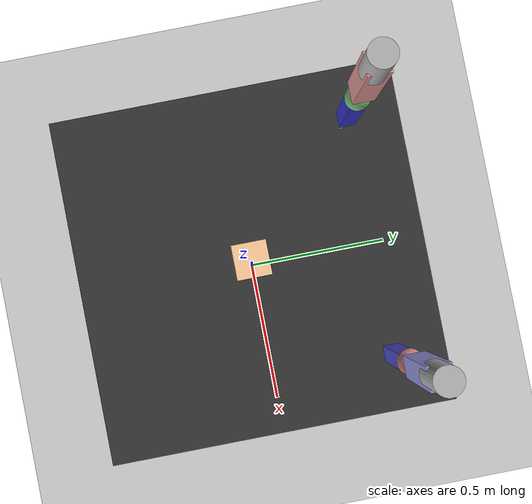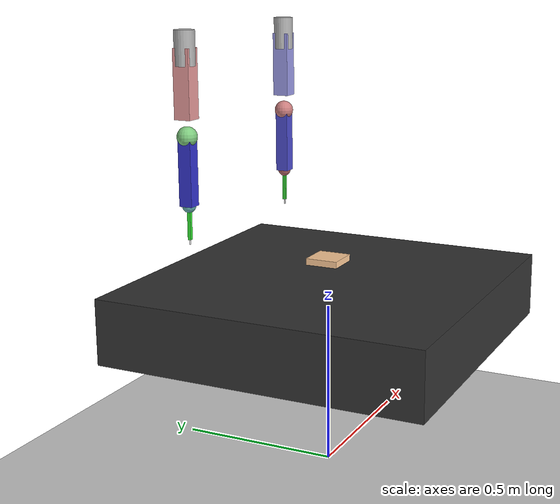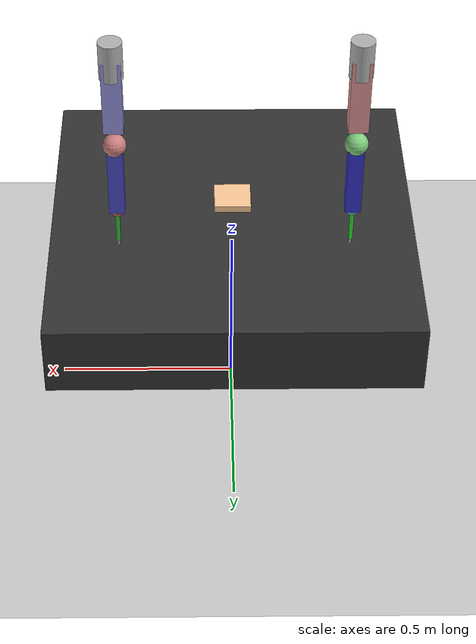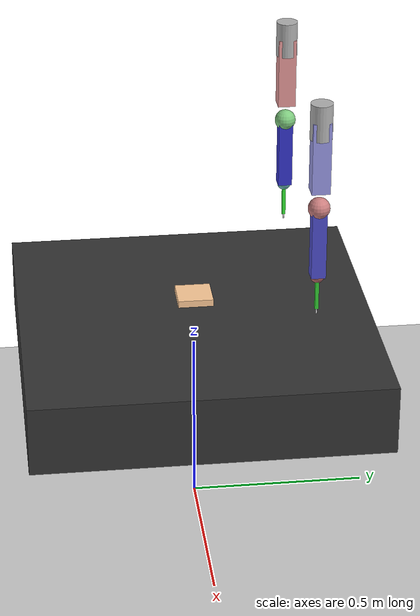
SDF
<?xml version="1.0" ?>
<sdf version="1.8">
  <world name="suturing_world">

    <!-- Physics -->
    <physics name="1ms" type="ignored">
      <max_step_size>0.001</max_step_size>
      <real_time_factor>1.0</real_time_factor>
    </physics>

    <!-- Plugin for physics -->
    <plugin filename="libgz-sim-physics-system.so" name="gz::sim::systems::Physics"/>
    <!-- Plugin for user commands -->
    <plugin filename="libgz-sim-user-commands-system.so" name="gz::sim::systems::UserCommands"/>
    <!-- Plugin for scene broadcast -->
    <plugin filename="libgz-sim-scene-broadcaster-system.so" name="gz::sim::systems::SceneBroadcaster"/>
    <!-- Plugin for sensors -->
    <plugin filename="libgz-sim-sensors-system.so" name="gz::sim::systems::Sensors">
      <render_engine>ogre2</render_engine>
    </plugin>

    <!-- GUI -->
    <gui fullscreen="0">
      <plugin filename="GzScene3D" name="3D View">
        <gz-gui>
          <title>3D View</title>
          <property type="bool" key="showTitleBar">false</property>
          <property type="string" key="state">docked</property>
        </gz-gui>
        <engine>ogre2</engine>
        <scene>scene</scene>
        <ambient_light>0.4 0.4 0.4</ambient_light>
        <background_color>0.8 0.8 0.8</background_color>
        <camera_pose>1.0 1.0 1.0 0 0.5 -0.8</camera_pose>
      </plugin>
      <plugin filename="WorldControl" name="World control">
        <gz-gui>
          <title>World control</title>
          <property type="bool" key="showTitleBar">false</property>
          <property type="bool" key="resizable">false</property>
          <property type="double" key="height">72</property>
          <property type="double" key="width">121</property>
          <property type="double" key="z">1</property>
          <property type="string" key="state">floating</property>
          <anchors target="3D View">
            <line own="left" target="left"/>
            <line own="bottom" target="bottom"/>
          </anchors>
        </gz-gui>
        <play_pause>true</play_pause>
        <step>true</step>
        <start_paused>true</start_paused>
      </plugin>
      <plugin filename="WorldStats" name="World stats">
        <gz-gui>
          <title>World stats</title>
          <property type="bool" key="showTitleBar">false</property>
          <property type="bool" key="resizable">false</property>
          <property type="double" key="height">110</property>
          <property type="double" key="width">290</property>
          <property type="double" key="z">1</property>
          <property type="string" key="state">floating</property>
          <anchors target="3D View">
            <line own="right" target="right"/>
            <line own="bottom" target="bottom"/>
          </anchors>
        </gz-gui>
        <sim_time>true</sim_time>
        <real_time>true</real_time>
        <real_time_factor>true</real_time_factor>
        <iterations>true</iterations>
      </plugin>
    </gui>

    <!-- Lighting -->
    <light type="directional" name="sun">
      <cast_shadows>true</cast_shadows>
      <pose>0 0 10 0 0 0</pose>
      <diffuse>0.8 0.8 0.8 1</diffuse>
      <specular>0.2 0.2 0.2 1</specular>
      <attenuation>
        <range>1000</range>
        <constant>0.9</constant>
        <linear>0.01</linear>
        <quadratic>0.001</quadratic>
      </attenuation>
      <direction>-0.5 0.1 -0.9</direction>
    </light>

    <!-- Additional lighting for better camera visibility -->
    <light type="point" name="point_light_1">
      <pose>0.2 0 0.5 0 0 0</pose>
      <diffuse>0.5 0.5 0.5 1</diffuse>
      <specular>0.1 0.1 0.1 1</specular>
      <attenuation>
        <range>2</range>
        <constant>0.8</constant>
        <linear>0.01</linear>
        <quadratic>0.001</quadratic>
      </attenuation>
    </light>

    <light type="point" name="point_light_2">
      <pose>-0.2 0 0.5 0 0 0</pose>
      <diffuse>0.5 0.5 0.5 1</diffuse>
      <specular>0.1 0.1 0.1 1</specular>
      <attenuation>
        <range>2</range>
        <constant>0.8</constant>
        <linear>0.01</linear>
        <quadratic>0.001</quadratic>
      </attenuation>
    </light>

    <!-- Ground plane -->
    <model name="ground_plane">
      <static>true</static>
      <link name="link">
        <collision name="collision">
          <geometry>
            <plane>
              <normal>0 0 1</normal>
              <size>100 100</size>
            </plane>
          </geometry>
        </collision>
        <visual name="visual">
          <geometry>
            <plane>
              <normal>0 0 1</normal>
              <size>100 100</size>
            </plane>
          </geometry>
          <material>
            <ambient>0.8 0.8 0.8 1</ambient>
            <diffuse>0.8 0.8 0.8 1</diffuse>
            <specular>0.8 0.8 0.8 1</specular>
          </material>
        </visual>
      </link>
    </model>

    <!-- Da Vinci Robot Model with 2x 6-DOF arms and needles -->
    <model name="da_vinci_robot">
      <pose>0 0 0.5 0 0 0</pose>

      <!-- Base link -->
      <link name="base_link">
        <pose>0 0 0 0 0 0</pose>
        <visual name="visual">
          <geometry>
            <box><size>1 1 0.2</size></box>
          </geometry>
          <material><diffuse>0.2 0.2 0.2 1</diffuse></material>
        </visual>
        <collision name="collision">
          <geometry>
            <box><size>1 1 0.2</size></box>
          </geometry>
        </collision>
        <inertial>
          <mass>100</mass>
          <inertia>
            <ixx>10</ixx><iyy>10</iyy><izz>10</izz>
            <ixy>0</ixy><ixz>0</ixz><iyz>0</iyz>
          </inertia>
        </inertial>
      </link>

      <!-- Weld arms to the base -->
      <joint name="arm1_shoulder_fixed" type="fixed">
        <parent>base_link</parent>
        <child>arm1_shoulder</child>
      </joint>
      <joint name="arm2_shoulder_fixed" type="fixed">
        <parent>base_link</parent>
        <child>arm2_shoulder</child>
      </joint>

      <!-- Arm 1 -->
      <link name="arm1_shoulder">
        <pose>0.3 0.3 0.8 0 0 0</pose>
        <visual name="visual">
          <geometry>
            <cylinder><radius>0.03</radius><length>0.1</length></cylinder>
          </geometry>
          <material><diffuse>0.7 0.7 0.7 1</diffuse></material>
        </visual>
        <collision name="collision">
          <geometry>
            <cylinder><radius>0.03</radius><length>0.1</length></cylinder>
          </geometry>
        </collision>
        <inertial>
          <mass>0.1</mass>
          <inertia><ixx>0.001</ixx><iyy>0.001</iyy><izz>0.001</izz><ixy>0</ixy><ixz>0</ixz><iyz>0</iyz></inertia>
        </inertial>
      </link>

      <link name="arm1_upper_arm">
        <pose>0.3 0.3 0.7 0 0 0</pose>
        <visual name="visual">
          <geometry>
            <box><size>0.05 0.05 0.2</size></box>
          </geometry>
          <material><diffuse>0.6 0.6 0.9 1</diffuse></material>
        </visual>
        <collision name="collision">
          <geometry>
            <box><size>0.05 0.05 0.2</size></box>
          </geometry>
        </collision>
        <inertial>
          <mass>0.1</mass>
          <inertia><ixx>0.001</ixx><iyy>0.001</iyy><izz>0.001</izz><ixy>0</ixy><ixz>0</ixz><iyz>0</iyz></inertia>
        </inertial>
      </link>

      <link name="arm1_elbow">
        <pose>0.3 0.3 0.55 0 0 0</pose>
        <visual name="visual">
          <geometry>
            <sphere><radius>0.03</radius></sphere>
          </geometry>
          <material><diffuse>0.8 0.5 0.5 1</diffuse></material>
        </visual>
        <collision name="collision">
          <geometry>
            <sphere><radius>0.03</radius></sphere>
          </geometry>
        </collision>
        <inertial>
          <mass>0.05</mass>
          <inertia><ixx>0.0005</ixx><iyy>0.0005</iyy><izz>0.0005</izz><ixy>0</ixy><ixz>0</ixz><iyz>0</iyz></inertia>
        </inertial>
      </link>

      <link name="arm1_forearm">
        <pose>0.3 0.3 0.45 0 0 0</pose>
        <visual name="visual">
          <geometry>
            <box><size>0.04 0.04 0.2</size></box>
          </geometry>
          <material><diffuse>0.3 0.3 0.8 1</diffuse></material>
        </visual>
        <collision name="collision">
          <geometry>
            <box><size>0.04 0.04 0.2</size></box>
          </geometry>
        </collision>
        <inertial>
          <mass>0.08</mass>
          <inertia><ixx>0.0008</ixx><iyy>0.0008</iyy><izz>0.0008</izz><ixy>0</ixy><ixz>0</ixz><iyz>0</iyz></inertia>
        </inertial>
      </link>

      <link name="arm1_wrist">
        <pose>0.3 0.3 0.35 0 0 0</pose>
        <visual name="visual">
          <geometry>
            <sphere><radius>0.02</radius></sphere>
          </geometry>
          <material><diffuse>0.7 0.4 0.4 1</diffuse></material>
        </visual>
        <collision name="collision">
          <geometry>
            <sphere><radius>0.02</radius></sphere>
          </geometry>
        </collision>
        <inertial>
          <mass>0.03</mass>
          <inertia><ixx>0.0003</ixx><iyy>0.0003</iyy><izz>0.0003</izz><ixy>0</ixy><ixz>0</ixz><iyz>0</iyz></inertia>
        </inertial>
      </link>

      <link name="arm1_tool">
        <pose>0.3 0.3 0.3 0 0 0</pose>
        <visual name="visual">
          <geometry>
            <box><size>0.01 0.01 0.1</size></box>
          </geometry>
          <material><diffuse>0.2 0.8 0.2 1</diffuse></material>
        </visual>
        <collision name="collision">
          <geometry>
            <box><size>0.01 0.01 0.1</size></box>
          </geometry>
        </collision>
        <inertial>
          <mass>0.02</mass>
          <inertia><ixx>0.0002</ixx><iyy>0.0002</iyy><izz>0.0002</izz><ixy>0</ixy><ixz>0</ixz><iyz>0</iyz></inertia>
        </inertial>
      </link>

      <link name="needle1">
        <pose>0.3 0.3 0.25 0 0 0</pose>
        <visual name="visual">
          <geometry>
            <cylinder><radius>0.002</radius><length>0.03</length></cylinder>
          </geometry>
          <material><diffuse>0.9 0.9 0.9 1</diffuse></material>
        </visual>
        <collision name="collision">
          <geometry>
            <cylinder><radius>0.002</radius><length>0.03</length></cylinder>
          </geometry>
        </collision>
        <inertial>
          <mass>0.005</mass>
          <inertia><ixx>0.00001</ixx><iyy>0.00001</iyy><izz>0.00001</izz><ixy>0</ixy><ixz>0</ixz><iyz>0</iyz></inertia>
        </inertial>
      </link>

      <joint name="joint1_shoulder_upper" type="revolute">
        <parent>arm1_shoulder</parent><child>arm1_upper_arm</child>
        <axis><xyz>0 1 0</xyz><limit><lower>-1.57</lower><upper>1.57</upper></limit></axis>
      </joint>
      <joint name="joint1_upper_elbow" type="revolute">
        <parent>arm1_upper_arm</parent><child>arm1_elbow</child>
        <axis><xyz>0 0 1</xyz><limit><lower>-1.57</lower><upper>1.57</upper></limit></axis>
      </joint>
      <joint name="joint1_elbow_forearm" type="revolute">
        <parent>arm1_elbow</parent><child>arm1_forearm</child>
        <axis><xyz>0 1 0</xyz><limit><lower>-1.57</lower><upper>1.57</upper></limit></axis>
      </joint>
      <joint name="joint1_forearm_wrist" type="revolute">
        <parent>arm1_forearm</parent><child>arm1_wrist</child>
        <axis><xyz>0 0 1</xyz><limit><lower>-1.57</lower><upper>1.57</upper></limit></axis>
      </joint>
      <joint name="joint1_wrist_tool" type="revolute">
        <parent>arm1_wrist</parent><child>arm1_tool</child>
        <axis><xyz>0 1 0</xyz><limit><lower>-1.57</lower><upper>1.57</upper></limit></axis>
      </joint>
      <joint name="joint1_tool_needle" type="fixed">
        <parent>arm1_tool</parent><child>needle1</child>
      </joint>

      <!-- Arm 2 -->
      <link name="arm2_shoulder">
        <pose>-0.3 0.3 0.8 0 0 0</pose>
        <visual name="visual">
          <geometry>
            <cylinder><radius>0.03</radius><length>0.1</length></cylinder>
          </geometry>
          <material><diffuse>0.7 0.7 0.7 1</diffuse></material>
        </visual>
        <collision name="collision">
          <geometry>
            <cylinder><radius>0.03</radius><length>0.1</length></cylinder>
          </geometry>
        </collision>
        <inertial>
          <mass>0.1</mass>
          <inertia><ixx>0.001</ixx><iyy>0.001</iyy><izz>0.001</izz><ixy>0</ixy><ixz>0</ixz><iyz>0</iyz></inertia>
        </inertial>
      </link>

      <link name="arm2_upper_arm">
        <pose>-0.3 0.3 0.7 0 0 0</pose>
        <visual name="visual">
          <geometry>
            <box><size>0.05 0.05 0.2</size></box>
          </geometry>
          <material><diffuse>0.9 0.6 0.6 1</diffuse></material>
        </visual>
        <collision name="collision">
          <geometry>
            <box><size>0.05 0.05 0.2</size></box>
          </geometry>
        </collision>
        <inertial>
          <mass>0.1</mass>
          <inertia><ixx>0.001</ixx><iyy>0.001</iyy><izz>0.001</izz><ixy>0</ixy><ixz>0</ixz><iyz>0</iyz></inertia>
        </inertial>
      </link>

      <link name="arm2_elbow">
        <pose>-0.3 0.3 0.55 0 0 0</pose>
        <visual name="visual">
          <geometry>
            <sphere><radius>0.03</radius></sphere>
          </geometry>
          <material><diffuse>0.5 0.8 0.5 1</diffuse></material>
        </visual>
        <collision name="collision">
          <geometry>
            <sphere><radius>0.03</radius></sphere>
          </geometry>
        </collision>
        <inertial>
          <mass>0.05</mass>
          <inertia><ixx>0.0005</ixx><iyy>0.0005</iyy><izz>0.0005</izz><ixy>0</ixy><ixz>0</ixz><iyz>0</iyz></inertia>
        </inertial>
      </link>

      <link name="arm2_forearm">
        <pose>-0.3 0.3 0.45 0 0 0</pose>
        <visual name="visual">
          <geometry>
            <box><size>0.04 0.04 0.2</size></box>
          </geometry>
          <material><diffuse>0.2 0.2 0.8 1</diffuse></material>
        </visual>
        <collision name="collision">
          <geometry>
            <box><size>0.04 0.04 0.2</size></box>
          </geometry>
        </collision>
        <inertial>
          <mass>0.08</mass>
          <inertia><ixx>0.0008</ixx><iyy>0.0008</iyy><izz>0.0008</izz><ixy>0</ixy><ixz>0</ixz><iyz>0</iyz></inertia>
        </inertial>
      </link>

      <link name="arm2_wrist">
        <pose>-0.3 0.3 0.35 0 0 0</pose>
        <visual name="visual">
          <geometry>
            <sphere><radius>0.02</radius></sphere>
          </geometry>
          <material><diffuse>0.4 0.7 0.7 1</diffuse></material>
        </visual>
        <collision name="collision">
          <geometry>
            <sphere><radius>0.02</radius></sphere>
          </geometry>
        </collision>
        <inertial>
          <mass>0.03</mass>
          <inertia><ixx>0.0003</ixx><iyy>0.0003</iyy><izz>0.0003</izz><ixy>0</ixy><ixz>0</ixz><iyz>0</iyz></inertia>
        </inertial>
      </link>

      <link name="arm2_tool">
        <pose>-0.3 0.3 0.3 0 0 0</pose>
        <visual name="visual">
          <geometry>
            <box><size>0.01 0.01 0.1</size></box>
          </geometry>
          <material><diffuse>0.2 0.9 0.2 1</diffuse></material>
        </visual>
        <collision name="collision">
          <geometry>
            <box><size>0.01 0.01 0.1</size></box>
          </geometry>
        </collision>
        <inertial>
          <mass>0.02</mass>
          <inertia><ixx>0.0002</ixx><iyy>0.0002</iyy><izz>0.0002</izz><ixy>0</ixy><ixz>0</ixz><iyz>0</iyz></inertia>
        </inertial>
      </link>

      <link name="needle2">
        <pose>-0.3 0.3 0.25 0 0 0</pose>
        <visual name="visual">
          <geometry>
            <cylinder><radius>0.002</radius><length>0.03</length></cylinder>
          </geometry>
          <material><diffuse>0.9 0.9 0.9 1</diffuse></material>
        </visual>
        <collision name="collision">
          <geometry>
            <cylinder><radius>0.002</radius><length>0.03</length></cylinder>
          </geometry>
        </collision>
        <inertial>
          <mass>0.005</mass>
          <inertia><ixx>0.00001</ixx><iyy>0.00001</iyy><izz>0.00001</izz><ixy>0</ixy><ixz>0</ixz><iyz>0</iyz></inertia>
        </inertial>
      </link>

      <joint name="joint2_shoulder_upper" type="revolute">
        <parent>arm2_shoulder</parent><child>arm2_upper_arm</child>
        <axis><xyz>0 1 0</xyz><limit><lower>-1.57</lower><upper>1.57</upper></limit></axis>
      </joint>
      <joint name="joint2_upper_elbow" type="revolute">
        <parent>arm2_upper_arm</parent><child>arm2_elbow</child>
        <axis><xyz>0 0 1</xyz><limit><lower>-1.57</lower><upper>1.57</upper></limit></axis>
      </joint>
      <joint name="joint2_elbow_forearm" type="revolute">
        <parent>arm2_elbow</parent><child>arm2_forearm</child>
        <axis><xyz>0 1 0</xyz><limit><lower>-1.57</lower><upper>1.57</upper></limit></axis>
      </joint>
      <joint name="joint2_forearm_wrist" type="revolute">
        <parent>arm2_forearm</parent><child>arm2_wrist</child>
        <axis><xyz>0 0 1</xyz><limit><lower>-1.57</lower><upper>1.57</upper></limit></axis>
      </joint>
      <joint name="joint2_wrist_tool" type="revolute">
        <parent>arm2_wrist</parent><child>arm2_tool</child>
        <axis><xyz>0 1 0</xyz><limit><lower>-1.57</lower><upper>1.57</upper></limit></axis>
      </joint>
      <joint name="joint2_tool_needle" type="fixed">
        <parent>arm2_tool</parent><child>needle2</child>
      </joint>

      <!-- Tissue -->
      <link name="tissue">
        <pose>0 0 0.15 0 0 0</pose>
        <visual name="tissue_visual">
          <geometry>
            <box>
              <size>0.1 0.1 0.02</size>
            </box>
          </geometry>
          <material>
            <ambient>1 0.8 0.6 1</ambient>
            <diffuse>1 0.8 0.6 1</diffuse>
          </material>
        </visual>
        <collision name="tissue_collision">
          <geometry>
            <box>
              <size>0.1 0.1 0.02</size>
            </box>
          </geometry>
        </collision>
        <inertial>
          <mass>0.2</mass>
          <inertia>
            <ixx>0.001</ixx>
            <ixy>0</ixy>
            <ixz>0</ixz>
            <iyy>0.001</iyy>
            <iyz>0</iyz>
            <izz>0.001</izz>
          </inertia>
        </inertial>
      </link>
      <joint name="base_to_tissue" type="fixed">
        <parent>base_link</parent>
        <child>tissue</child>
      </joint>

    </model>

    <!-- Camera 1: Top-down view of tissue (needle entry/exit point monitoring) -->
    <model name="camera1">
      <static>true</static>
      <pose>-0.25 -0.3 0.4 0 0 0</pose> <!-- position only -->

      <link name="link">
        <visual name="visual">
          <geometry>
            <box><size>0.05 0.05 0.05</size></box>
          </geometry>
          <material><diffuse>0.2 0.2 0.8 1</diffuse></material>
        </visual>

        <sensor name="camera1_sensor" type="camera">
          <pose>0 0 0 -1 -1.4 3.14</pose> <!-- apply orientation here! -->
          <camera>
            <horizontal_fov>1.3962634</horizontal_fov>
            <image>
              <width>640</width>
              <height>480</height>
              <format>R8G8B8</format>
            </image>
            <clip>
              <near>0.1</near>
              <far>100</far>
            </clip>
          </camera>
          <always_on>1</always_on>
          <update_rate>30</update_rate>
          <visualize>true</visualize>
          <topic>camera1</topic>
        </sensor>
      </link>
    </model>

    <!-- Camera 2: Side view from left (needle trajectory monitoring) -->
    <model name="camera2">
      <static>true</static>
      <pose>-0.15 -0.3 0.4 -0.5 -1.4 3.14</pose>

      <link name="link">
        <visual name="visual">
          <geometry>
            <box><size>0.05 0.05 0.05</size></box>
          </geometry>
          <material><diffuse>0.2 0.8 0.2 1</diffuse></material>
        </visual>
        <sensor name="camera2_sensor" type="camera">
          <camera>
            <horizontal_fov>1.3962634</horizontal_fov>
            <image>
              <width>640</width>
              <height>480</height>
              <format>R8G8B8</format>
            </image>
            <clip>
              <near>0.1</near>
              <far>100</far>
            </clip>
          </camera>
          <always_on>1</always_on>
          <update_rate>30</update_rate>
          <visualize>true</visualize>
          <topic>camera2</topic>
        </sensor>
      </link>
    </model>

    <!-- Camera 3: Side view from right (needle trajectory monitoring) -->
    <model name="camera3">
      <static>true</static>
      <pose>-0.05 -0.3 0.4 -0.25 -1.4 3.14</pose>

      <link name="link">
        <visual name="visual">
          <geometry>
            <box><size>0.05 0.05 0.05</size></box>
          </geometry>
          <material><diffuse>0.8 0.2 0.2 1</diffuse></material>
        </visual>
        <sensor name="camera3_sensor" type="camera">
          <camera>
            <horizontal_fov>1.3962634</horizontal_fov>
            <image>
              <width>640</width>
              <height>480</height>
              <format>R8G8B8</format>
            </image>
            <clip>
              <near>0.1</near>
              <far>100</far>
            </clip>
          </camera>
          <always_on>1</always_on>
          <update_rate>30</update_rate>
          <visualize>true</visualize>
          <topic>camera3</topic>
        </sensor>
      </link>
    </model>

    <!-- Camera 4: Front view (overall needle/tissue interaction) -->
    <model name="camera4">
      <static>true</static>
      <pose>0.05  -0.3 0.4 0.25 -1.4 3.14</pose>

      <link name="link">
        <visual name="visual">
          <geometry>
            <box><size>0.05 0.05 0.05</size></box>
          </geometry>
          <material><diffuse>0.8 0.8 0.2 1</diffuse></material>
        </visual>
        <sensor name="camera4_sensor" type="camera">
          <camera>
            <horizontal_fov>1.3962634</horizontal_fov>
            <image>
              <width>640</width>
              <height>480</height>
              <format>R8G8B8</format>
            </image>
            <clip>
              <near>0.1</near>
              <far>100</far>
            </clip>
          </camera>
          <always_on>1</always_on>
          <update_rate>30</update_rate>
          <visualize>true</visualize>
          <topic>camera4</topic>
        </sensor>
      </link>
    </model>

    <!-- Camera 5: Rear view (opposite of camera4, for full coverage) -->
    <model name="camera5">
      <static>true</static>
      <pose>0.15  -0.3 0.4 0.5 -1.4 3.14</pose>

      <link name="link">
        <visual name="visual">
          <geometry>
            <box><size>0.05 0.05 0.05</size></box>
          </geometry>
          <material><diffuse>0.2 0.8 0.8 1</diffuse></material>
        </visual>
        <sensor name="camera5_sensor" type="camera">
          <camera>
            <horizontal_fov>1.3962634</horizontal_fov>
            <image>
              <width>640</width>
              <height>480</height>
              <format>R8G8B8</format>
            </image>
            <clip>
              <near>0.1</near>
              <far>100</far>
            </clip>
          </camera>
          <always_on>1</always_on>
          <update_rate>30</update_rate>
          <visualize>true</visualize>
          <topic>camera5</topic>
        </sensor>
      </link>
    </model>

    <!-- Camera 6: Oblique/angled view (for extra context, e.g. from above and to the side) -->
    <model name="camera6">
      <static>true</static>
      <pose>0.25  -0.3 0.4 0 0 0</pose>
      <link name="link">
        <visual name="visual">
          <geometry>
            <box><size>0.05 0.05 0.05</size></box>
          </geometry>
          <material><diffuse>0.7 0.2 0.7 1</diffuse></material>
        </visual>
        <sensor name="camera6_sensor" type="camera">
        <pose>0 0 0 1 -1.4 3.14</pose>
          <camera>
            <horizontal_fov>1.3962634</horizontal_fov>
            <image>
              <width>640</width>
              <height>480</height>
              <format>R8G8B8</format>
            </image>
            <clip>
              <near>0.1</near>
              <far>100</far>
            </clip>
          </camera>
          <always_on>1</always_on>
          <update_rate>30</update_rate>
          <visualize>true</visualize>
          <topic>camera6</topic>
        </sensor>
      </link>
    </model>

  </world>
</sdf>
